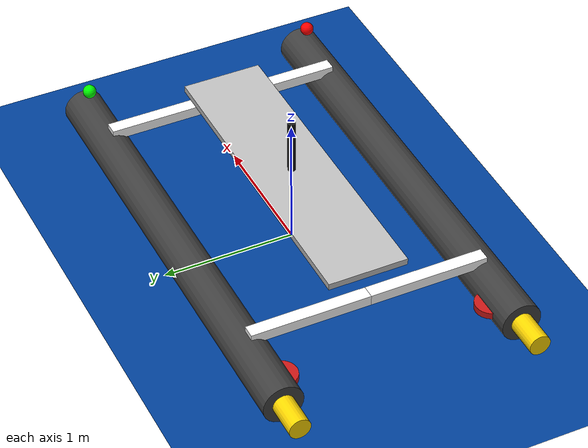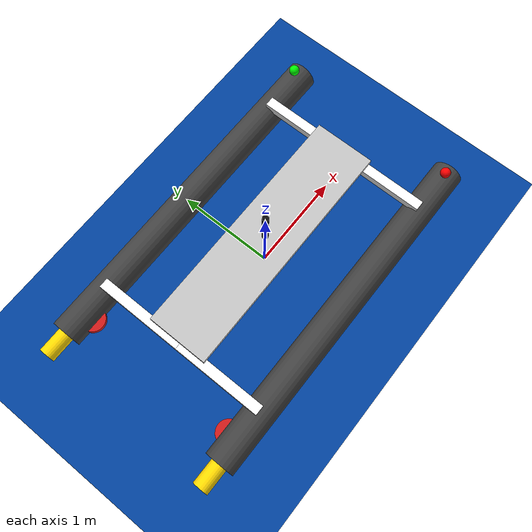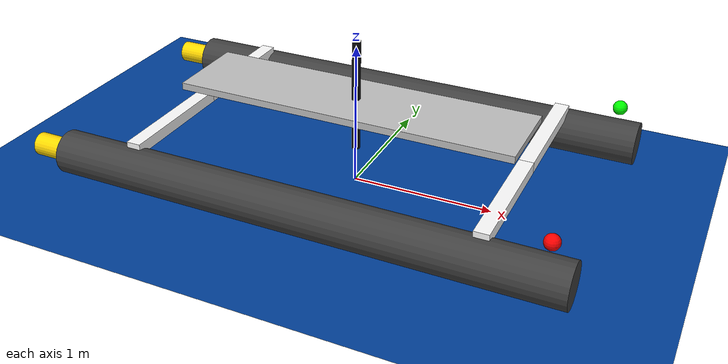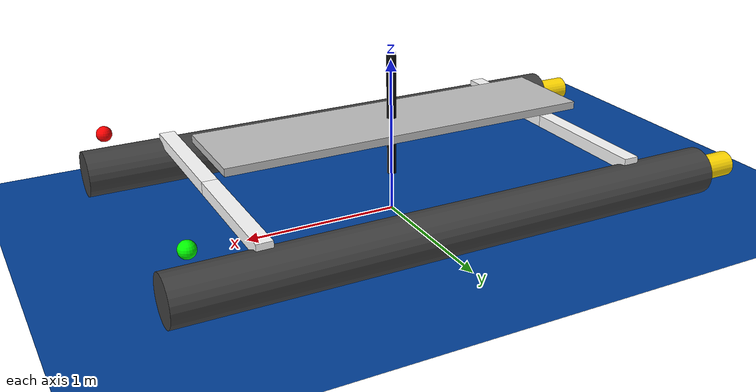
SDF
<?xml version="1.0" ?>
<sdf version="1.8">
  <world name="usv_monde_leger">

    <!-- ═══ PHYSIQUE ═══════════════════════════════════════════════════════ -->
    <physics name="1ms" type="ode">
      <max_step_size>0.01</max_step_size>
      <real_time_factor>1.0</real_time_factor>
    </physics>

    <!-- ═══ PLUGINS MONDE ══════════════════════════════════════════════════ -->
    <plugin filename="gz-sim-physics-system"        name="gz::sim::systems::Physics"/>
    <plugin filename="gz-sim-scene-broadcaster-system" name="gz::sim::systems::SceneBroadcaster"/>
    <plugin filename="gz-sim-user-commands-system"  name="gz::sim::systems::UserCommands"/>
    <plugin filename="gz-sim-imu-system"            name="gz::sim::systems::Imu"/>
    <plugin filename="gz-sim-navsat-system"         name="gz::sim::systems::NavSat"/>
    <plugin filename="gz-sim-magnetometer-system"   name="gz::sim::systems::Magnetometer"/>

    <!-- ═══ SCÈNE ET CIEL ══════════════════════════════════════════════════ -->
    <scene>
      <ambient>0.3 0.3 0.35 1.0</ambient>
      <background>0.53 0.81 0.98 1.0</background>
      <shadows>true</shadows>
      <sky>
        <clouds>
          <speed>10</speed>
          <direction>1.0</direction>
          <humidity>0.5</humidity>
          <mean_size>0.5</mean_size>
        </clouds>
      </sky>
    </scene>

    <!-- ═══ ATMOSPHÈRE ═════════════════════════════════════════════════════ -->
    <atmosphere type="adiabatic">
      <temperature>293.15</temperature>
      <pressure>101325</pressure>
      <temperature_gradient>-0.0065</temperature_gradient>
    </atmosphere>

    <!-- ═══ ÉCLAIRAGE ══════════════════════════════════════════════════════ -->
    <!-- Soleil principal — ombres activées -->
    <light type="directional" name="sun">
      <cast_shadows>true</cast_shadows>
      <pose>0 0 10 0 0 0</pose>
      <diffuse>1.0 0.95 0.85 1</diffuse>
      <specular>0.4 0.4 0.4 1</specular>
      <attenuation>
        <range>1000</range>
        <constant>0.9</constant>
        <linear>0.01</linear>
        <quadratic>0.001</quadratic>
      </attenuation>
      <direction>-0.5 0.1 -0.9</direction>
    </light>

    <!-- Lumière de remplissage douce — pas d'ombres -->
    <light type="directional" name="fill_light">
      <cast_shadows>false</cast_shadows>
      <pose>0 0 8 0 0 0</pose>
      <diffuse>0.4 0.5 0.6 1</diffuse>
      <specular>0.1 0.1 0.1 1</specular>
      <direction>0.5 -0.1 -0.9</direction>
    </light>

    <!-- ═══ OCÉAN ══════════════════════════════════════════════════════════ -->
    <model name="ocean_plane">
      <static>true</static>
      <link name="link">
        <visual name="visual">
          <geometry>
            <plane>
              <normal>0 0 1</normal>
              <size>500 500</size>
            </plane>
          </geometry>
          <material>
            <ambient>0.0 0.15 0.4 1.0</ambient>
            <diffuse>0.0 0.25 0.6 1.0</diffuse>
            <specular>0.8 0.8 0.9 1.0</specular>
          </material>
        </visual>
      </link>
    </model>

    <!-- ═══ USV WAM-V CATAMARAN ════════════════════════════════════════════ -->
    <model name="wamv">
      <static>true</static>
      <pose>0 0 0.25 0 0 0</pose>

      <link name="base_link">
        <inertial>
          <mass>180.0</mass>
          <inertia>
            <ixx>120.0</ixx><iyy>393.0</iyy><izz>446.0</izz>
            <ixy>0</ixy><ixz>0</ixz><iyz>0</iyz>
          </inertia>
        </inertial>

        <!-- ── COQUES ─────────────────────────────────────────────────── -->
        <!-- Coque bâbord (gauche) : cylindre horizontal selon X -->
        <visual name="hull_port">
          <pose>0 0.9 0 0 1.5708 0</pose>
          <geometry>
            <cylinder><radius>0.15</radius><length>3.5</length></cylinder>
          </geometry>
          <material>
            <ambient>0.25 0.25 0.25 1</ambient>
            <diffuse>0.25 0.25 0.25 1</diffuse>
            <specular>0.35 0.35 0.35 1</specular>
          </material>
        </visual>

        <!-- Coque tribord (droite) -->
        <visual name="hull_starboard">
          <pose>0 -0.9 0 0 1.5708 0</pose>
          <geometry>
            <cylinder><radius>0.15</radius><length>3.5</length></cylinder>
          </geometry>
          <material>
            <ambient>0.25 0.25 0.25 1</ambient>
            <diffuse>0.25 0.25 0.25 1</diffuse>
            <specular>0.35 0.35 0.35 1</specular>
          </material>
        </visual>

        <!-- ── BRAS AVANT ──────────────────────────────────────────────── -->
        <!-- Bras avant bâbord (y=0 → y=+0.9) -->
        <visual name="arm_front_port">
          <pose>1.2 0.45 0.15 0 0 0</pose>
          <geometry>
            <box><size>0.1 0.9 0.08</size></box>
          </geometry>
          <material>
            <ambient>1.0 1.0 1.0 1</ambient>
            <diffuse>1.0 1.0 1.0 1</diffuse>
            <specular>0.4 0.4 0.4 1</specular>
          </material>
        </visual>

        <!-- Bras avant tribord (y=0 → y=-0.9) -->
        <visual name="arm_front_starboard">
          <pose>1.2 -0.45 0.15 0 0 0</pose>
          <geometry>
            <box><size>0.1 0.9 0.08</size></box>
          </geometry>
          <material>
            <ambient>1.0 1.0 1.0 1</ambient>
            <diffuse>1.0 1.0 1.0 1</diffuse>
            <specular>0.4 0.4 0.4 1</specular>
          </material>
        </visual>

        <!-- ── BRAS ARRIÈRE ────────────────────────────────────────────── -->
        <!-- Bras arrière bâbord -->
        <visual name="arm_rear_port">
          <pose>-1.2 0.45 0.15 0 0 0</pose>
          <geometry>
            <box><size>0.1 0.9 0.08</size></box>
          </geometry>
          <material>
            <ambient>1.0 1.0 1.0 1</ambient>
            <diffuse>1.0 1.0 1.0 1</diffuse>
            <specular>0.4 0.4 0.4 1</specular>
          </material>
        </visual>

        <!-- Bras arrière tribord -->
        <visual name="arm_rear_starboard">
          <pose>-1.2 -0.45 0.15 0 0 0</pose>
          <geometry>
            <box><size>0.1 0.9 0.08</size></box>
          </geometry>
          <material>
            <ambient>1.0 1.0 1.0 1</ambient>
            <diffuse>1.0 1.0 1.0 1</diffuse>
            <specular>0.4 0.4 0.4 1</specular>
          </material>
        </visual>

        <!-- ── PLATEFORME CENTRALE ─────────────────────────────────────── -->
        <visual name="platform">
          <pose>0 0 0.35 0 0 0</pose>
          <geometry>
            <box><size>2.4 0.6 0.05</size></box>
          </geometry>
          <material>
            <ambient>0.75 0.75 0.75 1</ambient>
            <diffuse>0.75 0.75 0.75 1</diffuse>
            <specular>0.5 0.5 0.5 1</specular>
          </material>
        </visual>

        <!-- ── MÂT CENTRAL ────────────────────────────────────────────── -->
        <!-- Cylindre vertical, centre à z=0.4m, hauteur 0.8m -->
        <visual name="mast">
          <pose>0 0 0.4 0 0 0</pose>
          <geometry>
            <cylinder><radius>0.03</radius><length>0.8</length></cylinder>
          </geometry>
          <material>
            <ambient>0.05 0.05 0.05 1</ambient>
            <diffuse>0.05 0.05 0.05 1</diffuse>
            <specular>0.2 0.2 0.2 1</specular>
          </material>
        </visual>

        <!-- ── BOÎTIERS PROPULSEURS ────────────────────────────────────── -->
        <!-- Propulseur bâbord arrière — jaune #FFD700 = (1.0, 0.843, 0.0) -->
        <visual name="thruster_housing_port">
          <pose>-1.8 0.9 0 0 1.5708 0</pose>
          <geometry>
            <cylinder><radius>0.08</radius><length>0.4</length></cylinder>
          </geometry>
          <material>
            <ambient>1.0 0.843 0.0 1</ambient>
            <diffuse>1.0 0.843 0.0 1</diffuse>
            <specular>0.5 0.4 0.0 1</specular>
          </material>
        </visual>

        <!-- Propulseur tribord arrière -->
        <visual name="thruster_housing_starboard">
          <pose>-1.8 -0.9 0 0 1.5708 0</pose>
          <geometry>
            <cylinder><radius>0.08</radius><length>0.4</length></cylinder>
          </geometry>
          <material>
            <ambient>1.0 0.843 0.0 1</ambient>
            <diffuse>1.0 0.843 0.0 1</diffuse>
            <specular>0.5 0.4 0.0 1</specular>
          </material>
        </visual>

        <!-- ── FEUX DE NAVIGATION ──────────────────────────────────────── -->
        <!-- Feu vert bâbord (gauche / port) -->
        <visual name="nav_light_port">
          <pose>1.6 0.9 0.25 0 0 0</pose>
          <geometry>
            <sphere><radius>0.05</radius></sphere>
          </geometry>
          <material>
            <ambient>0.0 1.0 0.0 1</ambient>
            <diffuse>0.0 1.0 0.0 1</diffuse>
            <specular>0.0 0.3 0.0 1</specular>
          </material>
        </visual>

        <!-- Feu rouge tribord (droite / starboard) -->
        <visual name="nav_light_starboard">
          <pose>1.6 -0.9 0.25 0 0 0</pose>
          <geometry>
            <sphere><radius>0.05</radius></sphere>
          </geometry>
          <material>
            <ambient>1.0 0.0 0.0 1</ambient>
            <diffuse>1.0 0.0 0.0 1</diffuse>
            <specular>0.3 0.0 0.0 1</specular>
          </material>
        </visual>

        <!-- ── CAPTEURS (inchangés) ────────────────────────────────────── -->
        <sensor name="imu_sensor" type="imu">
          <always_on>1</always_on>
          <update_rate>100</update_rate>
          <topic>/wamv/sensors/imu</topic>
        </sensor>
        <sensor name="gps_sensor" type="navsat">
          <always_on>1</always_on>
          <update_rate>10</update_rate>
          <topic>/wamv/sensors/gps</topic>
        </sensor>
        <sensor name="mag_sensor" type="magnetometer">
          <always_on>1</always_on>
          <update_rate>50</update_rate>
          <topic>/wamv/sensors/magnetometer</topic>
        </sensor>
      </link>

      <!-- ── HÉLICES (links + joints inchangés) ──────────────────────── -->
      <link name="left_propeller">
        <pose>-1.5 0.8 0.0 0 0 0</pose>
        <inertial>
          <mass>0.5</mass>
          <inertia><ixx>0.01</ixx><iyy>0.01</iyy><izz>0.01</izz></inertia>
        </inertial>
        <visual name="visual">
          <geometry>
            <cylinder><radius>0.12</radius><length>0.05</length></cylinder>
          </geometry>
          <material><ambient>0.8 0.1 0.1 1</ambient></material>
        </visual>
      </link>
      <joint name="left_engine_propeller_joint" type="revolute">
        <parent>base_link</parent>
        <child>left_propeller</child>
        <axis>
          <xyz>1 0 0</xyz>
          <limit><lower>-1e16</lower><upper>1e16</upper></limit>
        </axis>
      </joint>

      <link name="right_propeller">
        <pose>-1.5 -0.8 0.0 0 0 0</pose>
        <inertial>
          <mass>0.5</mass>
          <inertia><ixx>0.01</ixx><iyy>0.01</iyy><izz>0.01</izz></inertia>
        </inertial>
        <visual name="visual">
          <geometry>
            <cylinder><radius>0.12</radius><length>0.05</length></cylinder>
          </geometry>
          <material><ambient>0.8 0.1 0.1 1</ambient></material>
        </visual>
      </link>
      <joint name="right_engine_propeller_joint" type="revolute">
        <parent>base_link</parent>
        <child>right_propeller</child>
        <axis>
          <xyz>1 0 0</xyz>
          <limit><lower>-1e16</lower><upper>1e16</upper></limit>
        </axis>
      </joint>

      <!-- ── PLUGINS THRUSTER (inchangés) ────────────────────────────── -->
      <plugin filename="gz-sim-thruster-system" name="gz::sim::systems::Thruster">
        <joint_name>left_engine_propeller_joint</joint_name>
        <thrust_coefficient>0.004422</thrust_coefficient>
        <fluid_density>1000</fluid_density>
        <propeller_diameter>0.24</propeller_diameter>
        <velocity_control>true</velocity_control>
        <use_angvel_cmd>false</use_angvel_cmd>
        <topic>/wamv/thrusters/left/thrust</topic>
      </plugin>
      <plugin filename="gz-sim-thruster-system" name="gz::sim::systems::Thruster">
        <joint_name>right_engine_propeller_joint</joint_name>
        <thrust_coefficient>0.004422</thrust_coefficient>
        <fluid_density>1000</fluid_density>
        <propeller_diameter>0.24</propeller_diameter>
        <velocity_control>true</velocity_control>
        <use_angvel_cmd>false</use_angvel_cmd>
        <topic>/wamv/thrusters/right/thrust</topic>
      </plugin>
    </model>

    <!-- ═══ COORDONNÉES SPHÉRIQUES (inchangées) ═══════════════════════════ -->
    <spherical_coordinates>
      <surface_model>EARTH_WGS84</surface_model>
      <latitude_deg>36.7538</latitude_deg>
      <longitude_deg>3.0588</longitude_deg>
      <elevation>0</elevation>
      <heading_deg>0</heading_deg>
    </spherical_coordinates>

  </world>
</sdf>
